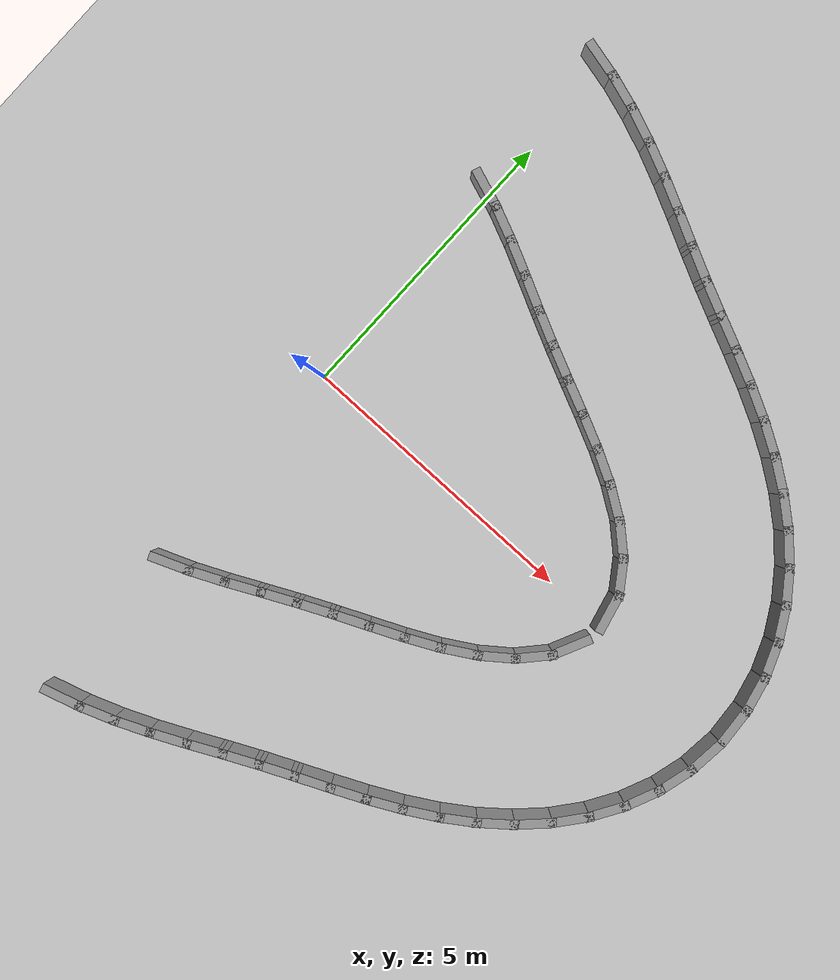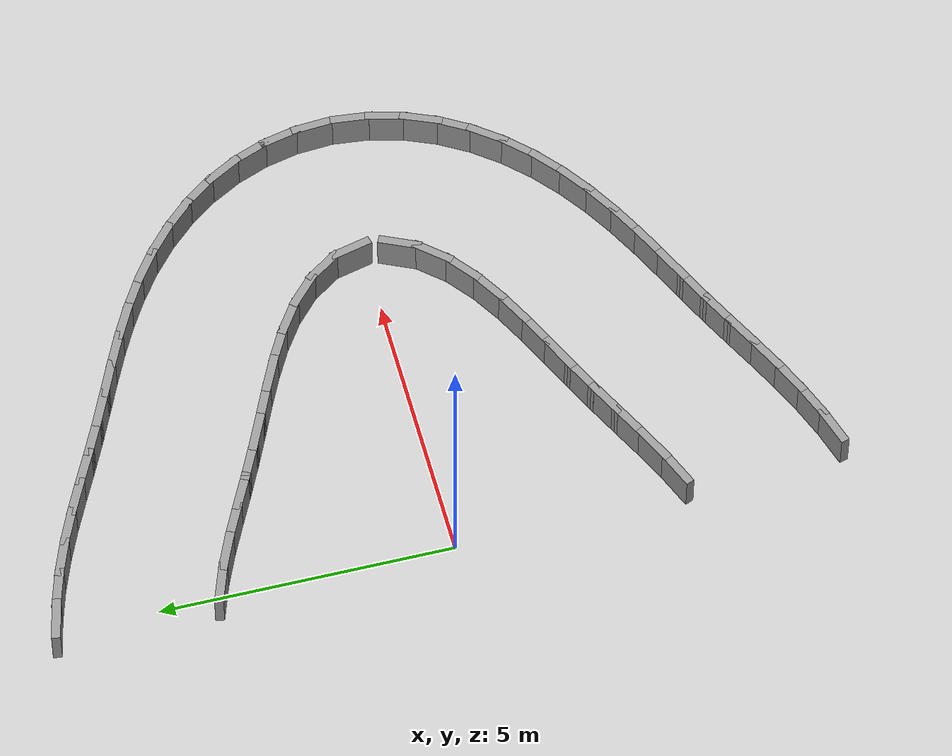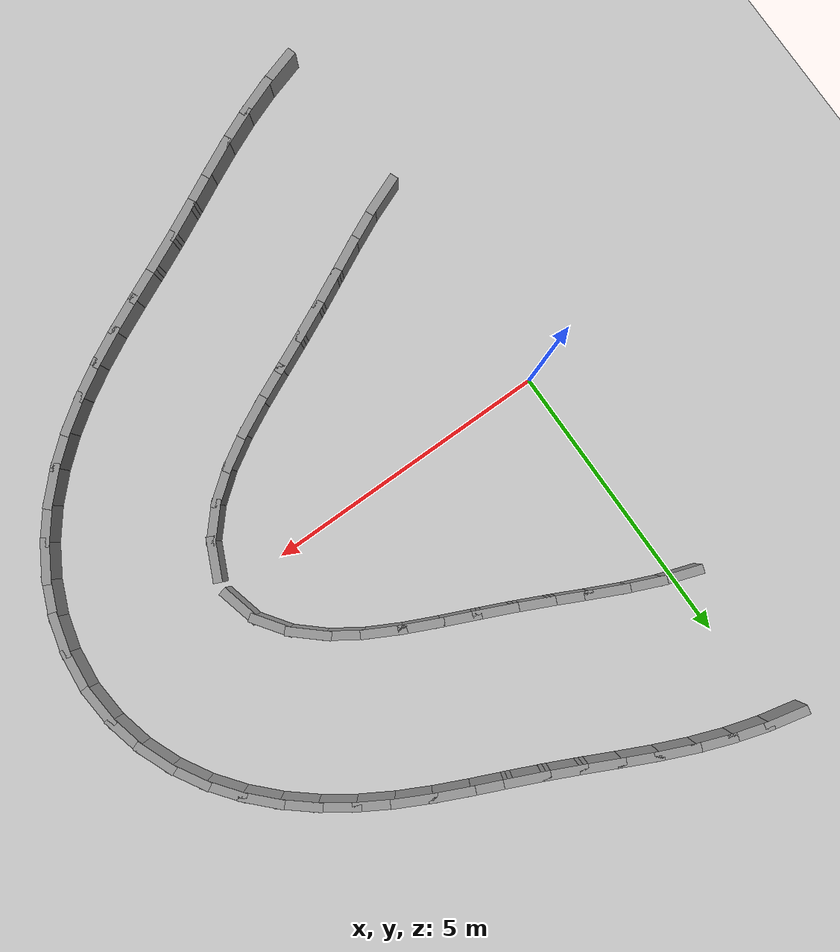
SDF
<sdf version="1.7">
 <world name="default">
  <model name="ground_plane">
   <static>1</static>
   <link name="link">
    <collision name="collision">
     <geometry><plane><normal>0 0 1</normal><size>100 100</size></plane></geometry>
     <surface><friction><ode><mu>100</mu><mu2>50</mu2></ode></friction></surface>
    </collision>
    <visual name="visual">
     <cast_shadows>0</cast_shadows>
     <geometry><plane><normal>0 0 1</normal><size>100 100</size></plane></geometry>
     <material>
      <script><uri>file://media/materials/scripts/gazebo.material</uri><name>Gazebo/Grey</name></script>
     </material>
    </visual>
   </link>
  </model>
  <model name="rand_lobed_01">
   <link name="Wall_0">
    <collision name="Wall_0_Collision">
     <geometry><box><size>0.7447 0.1500 0.6000</size></box></geometry>
     <pose>0 0 0.3000 0 -0 0</pose>
    </collision>
    <visual name="Wall_0_Visual">
     <pose>0 0 0.3000 0 -0 0</pose>
     <geometry><box><size>0.7447 0.1500 0.6000</size></box></geometry>
     <material>
      <script><uri>file://media/materials/scripts/gazebo.material</uri><name>Gazebo/Grey</name></script>
      <ambient>1 1 1 1</ambient>
     </material>
    </visual>
    <pose>5.9368 0.2886 0 0 -0 1.81346</pose>
   </link>
   <link name="Wall_1">
    <collision name="Wall_1_Collision">
     <geometry><box><size>0.7480 0.1500 0.6000</size></box></geometry>
     <pose>0 0 0.3000 0 -0 0</pose>
    </collision>
    <visual name="Wall_1_Visual">
     <pose>0 0 0.3000 0 -0 0</pose>
     <geometry><box><size>0.7480 0.1500 0.6000</size></box></geometry>
     <material>
      <script><uri>file://media/materials/scripts/gazebo.material</uri><name>Gazebo/Grey</name></script>
      <ambient>1 1 1 1</ambient>
     </material>
    </visual>
    <pose>5.6933 0.8218 0 0 -0 2.18384</pose>
   </link>
   <link name="Wall_2">
    <collision name="Wall_2_Collision">
     <geometry><box><size>0.7492 0.1500 0.6000</size></box></geometry>
     <pose>0 0 0.3000 0 -0 0</pose>
    </collision>
    <visual name="Wall_2_Visual">
     <pose>0 0 0.3000 0 -0 0</pose>
     <geometry><box><size>0.7492 0.1500 0.6000</size></box></geometry>
     <material>
      <script><uri>file://media/materials/scripts/gazebo.material</uri><name>Gazebo/Grey</name></script>
      <ambient>1 1 1 1</ambient>
     </material>
    </visual>
    <pose>5.2981 1.2662 0 0 -0 2.41141</pose>
   </link>
   <link name="Wall_3">
    <collision name="Wall_3_Collision">
     <geometry><box><size>0.7497 0.1500 0.6000</size></box></geometry>
     <pose>0 0 0.3000 0 -0 0</pose>
    </collision>
    <visual name="Wall_3_Visual">
     <pose>0 0 0.3000 0 -0 0</pose>
     <geometry><box><size>0.7497 0.1500 0.6000</size></box></geometry>
     <material>
      <script><uri>file://media/materials/scripts/gazebo.material</uri><name>Gazebo/Grey</name></script>
      <ambient>1 1 1 1</ambient>
     </material>
    </visual>
    <pose>4.8248 1.6315 0 0 -0 2.55708</pose>
   </link>
   <link name="Wall_4">
    <collision name="Wall_4_Collision">
     <geometry><box><size>0.7499 0.1500 0.6000</size></box></geometry>
     <pose>0 0 0.3000 0 -0 0</pose>
    </collision>
    <visual name="Wall_4_Visual">
     <pose>0 0 0.3000 0 -0 0</pose>
     <geometry><box><size>0.7499 0.1500 0.6000</size></box></geometry>
     <material>
      <script><uri>file://media/materials/scripts/gazebo.material</uri><name>Gazebo/Grey</name></script>
      <ambient>1 1 1 1</ambient>
     </material>
    </visual>
    <pose>4.3103 1.9384 0 0 -0 2.65016</pose>
   </link>
   <link name="Wall_5">
    <collision name="Wall_5_Collision">
     <geometry><box><size>0.7500 0.1500 0.6000</size></box></geometry>
     <pose>0 0 0.3000 0 -0 0</pose>
    </collision>
    <visual name="Wall_5_Visual">
     <pose>0 0 0.3000 0 -0 0</pose>
     <geometry><box><size>0.7500 0.1500 0.6000</size></box></geometry>
     <material>
      <script><uri>file://media/materials/scripts/gazebo.material</uri><name>Gazebo/Grey</name></script>
      <ambient>1 1 1 1</ambient>
     </material>
    </visual>
    <pose>3.7743 2.2075 0 0 -0 2.70257</pose>
   </link>
   <link name="Wall_6">
    <collision name="Wall_6_Collision">
     <geometry><box><size>0.7500 0.1500 0.6000</size></box></geometry>
     <pose>0 0 0.3000 0 -0 0</pose>
    </collision>
    <visual name="Wall_6_Visual">
     <pose>0 0 0.3000 0 -0 0</pose>
     <geometry><box><size>0.7500 0.1500 0.6000</size></box></geometry>
     <material>
      <script><uri>file://media/materials/scripts/gazebo.material</uri><name>Gazebo/Grey</name></script>
      <ambient>1 1 1 1</ambient>
     </material>
    </visual>
    <pose>3.2290 2.4575 0 0 -0 2.72103</pose>
   </link>
   <link name="Wall_7">
    <collision name="Wall_7_Collision">
     <geometry><box><size>0.7500 0.1500 0.6000</size></box></geometry>
     <pose>0 0 0.3000 0 -0 0</pose>
    </collision>
    <visual name="Wall_7_Visual">
     <pose>0 0 0.3000 0 -0 0</pose>
     <geometry><box><size>0.7500 0.1500 0.6000</size></box></geometry>
     <material>
      <script><uri>file://media/materials/scripts/gazebo.material</uri><name>Gazebo/Grey</name></script>
      <ambient>1 1 1 1</ambient>
     </material>
    </visual>
    <pose>2.6821 2.7043 0 0 -0 2.71419</pose>
   </link>
   <link name="Wall_8">
    <collision name="Wall_8_Collision">
     <geometry><box><size>0.7500 0.1500 0.6000</size></box></geometry>
     <pose>0 0 0.3000 0 -0 0</pose>
    </collision>
    <visual name="Wall_8_Visual">
     <pose>0 0 0.3000 0 -0 0</pose>
     <geometry><box><size>0.7500 0.1500 0.6000</size></box></geometry>
     <material>
      <script><uri>file://media/materials/scripts/gazebo.material</uri><name>Gazebo/Grey</name></script>
      <ambient>1 1 1 1</ambient>
     </material>
    </visual>
    <pose>2.1384 2.9580 0 0 -0 2.69587</pose>
   </link>
   <link name="Wall_9">
    <collision name="Wall_9_Collision">
     <geometry><box><size>0.7500 0.1500 0.6000</size></box></geometry>
     <pose>0 0 0.3000 0 -0 0</pose>
    </collision>
    <visual name="Wall_9_Visual">
     <pose>0 0 0.3000 0 -0 0</pose>
     <geometry><box><size>0.7500 0.1500 0.6000</size></box></geometry>
     <material>
      <script><uri>file://media/materials/scripts/gazebo.material</uri><name>Gazebo/Grey</name></script>
      <ambient>1 1 1 1</ambient>
     </material>
    </visual>
    <pose>1.5986 3.2200 0 0 -0 2.68352</pose>
   </link>
   <link name="Wall_10">
    <collision name="Wall_10_Collision">
     <geometry><box><size>0.7500 0.1500 0.6000</size></box></geometry>
     <pose>0 0 0.3000 0 -0 0</pose>
    </collision>
    <visual name="Wall_10_Visual">
     <pose>0 0 0.3000 0 -0 0</pose>
     <geometry><box><size>0.7500 0.1500 0.6000</size></box></geometry>
     <material>
      <script><uri>file://media/materials/scripts/gazebo.material</uri><name>Gazebo/Grey</name></script>
      <ambient>1 1 1 1</ambient>
     </material>
    </visual>
    <pose>1.0592 3.4827 0 0 -0 2.69310</pose>
   </link>
   <link name="Wall_11">
    <collision name="Wall_11_Collision">
     <geometry><box><size>0.7499 0.1500 0.6000</size></box></geometry>
     <pose>0 0 0.3000 0 -0 0</pose>
    </collision>
    <visual name="Wall_11_Visual">
     <pose>0 0 0.3000 0 -0 0</pose>
     <geometry><box><size>0.7499 0.1500 0.6000</size></box></geometry>
     <material>
      <script><uri>file://media/materials/scripts/gazebo.material</uri><name>Gazebo/Grey</name></script>
      <ambient>1 1 1 1</ambient>
     </material>
    </visual>
    <pose>0.5136 3.7318 0 0 -0 2.73362</pose>
   </link>
   <link name="Wall_12">
    <collision name="Wall_12_Collision">
     <geometry><box><size>0.7498 0.1500 0.6000</size></box></geometry>
     <pose>0 0 0.3000 0 -0 0</pose>
    </collision>
    <visual name="Wall_12_Visual">
     <pose>0 0 0.3000 0 -0 0</pose>
     <geometry><box><size>0.7498 0.1500 0.6000</size></box></geometry>
     <material>
      <script><uri>file://media/materials/scripts/gazebo.material</uri><name>Gazebo/Grey</name></script>
      <ambient>1 1 1 1</ambient>
     </material>
    </visual>
    <pose>-0.0449 3.9497 0 0 -0 2.80566</pose>
   </link>
   <link name="Wall_38">
    <collision name="Wall_38_Collision">
     <geometry><box><size>0.7499 0.1500 0.6000</size></box></geometry>
     <pose>0 0 0.3000 0 -0 0</pose>
    </collision>
    <visual name="Wall_38_Visual">
     <pose>0 0 0.3000 0 -0 0</pose>
     <geometry><box><size>0.7499 0.1500 0.6000</size></box></geometry>
     <material>
      <script><uri>file://media/materials/scripts/gazebo.material</uri><name>Gazebo/Grey</name></script>
      <ambient>1 1 1 1</ambient>
     </material>
    </visual>
    <pose>0.2510 -3.8400 0 0 -0 0.37757</pose>
   </link>
   <link name="Wall_39">
    <collision name="Wall_39_Collision">
     <geometry><box><size>0.7500 0.1500 0.6000</size></box></geometry>
     <pose>0 0 0.3000 0 -0 0</pose>
    </collision>
    <visual name="Wall_39_Visual">
     <pose>0 0 0.3000 0 -0 0</pose>
     <geometry><box><size>0.7500 0.1500 0.6000</size></box></geometry>
     <material>
      <script><uri>file://media/materials/scripts/gazebo.material</uri><name>Gazebo/Grey</name></script>
      <ambient>1 1 1 1</ambient>
     </material>
    </visual>
    <pose>0.8020 -3.6035 0 0 -0 0.43337</pose>
   </link>
   <link name="Wall_40">
    <collision name="Wall_40_Collision">
     <geometry><box><size>0.7500 0.1500 0.6000</size></box></geometry>
     <pose>0 0 0.3000 0 -0 0</pose>
    </collision>
    <visual name="Wall_40_Visual">
     <pose>0 0 0.3000 0 -0 0</pose>
     <geometry><box><size>0.7500 0.1500 0.6000</size></box></geometry>
     <material>
      <script><uri>file://media/materials/scripts/gazebo.material</uri><name>Gazebo/Grey</name></script>
      <ambient>1 1 1 1</ambient>
     </material>
    </visual>
    <pose>1.3435 -3.3451 0 0 -0 0.45703</pose>
   </link>
   <link name="Wall_41">
    <collision name="Wall_41_Collision">
     <geometry><box><size>0.7500 0.1500 0.6000</size></box></geometry>
     <pose>0 0 0.3000 0 -0 0</pose>
    </collision>
    <visual name="Wall_41_Visual">
     <pose>0 0 0.3000 0 -0 0</pose>
     <geometry><box><size>0.7500 0.1500 0.6000</size></box></geometry>
     <material>
      <script><uri>file://media/materials/scripts/gazebo.material</uri><name>Gazebo/Grey</name></script>
      <ambient>1 1 1 1</ambient>
     </material>
    </visual>
    <pose>1.8824 -3.0813 0 0 -0 0.45340</pose>
   </link>
   <link name="Wall_42">
    <collision name="Wall_42_Collision">
     <geometry><box><size>0.7500 0.1500 0.6000</size></box></geometry>
     <pose>0 0 0.3000 0 -0 0</pose>
    </collision>
    <visual name="Wall_42_Visual">
     <pose>0 0 0.3000 0 -0 0</pose>
     <geometry><box><size>0.7500 0.1500 0.6000</size></box></geometry>
     <material>
      <script><uri>file://media/materials/scripts/gazebo.material</uri><name>Gazebo/Grey</name></script>
      <ambient>1 1 1 1</ambient>
     </material>
    </visual>
    <pose>2.4240 -2.8233 0 0 -0 0.43568</pose>
   </link>
   <link name="Wall_43">
    <collision name="Wall_43_Collision">
     <geometry><box><size>0.7500 0.1500 0.6000</size></box></geometry>
     <pose>0 0 0.3000 0 -0 0</pose>
    </collision>
    <visual name="Wall_43_Visual">
     <pose>0 0 0.3000 0 -0 0</pose>
     <geometry><box><size>0.7500 0.1500 0.6000</size></box></geometry>
     <material>
      <script><uri>file://media/materials/scripts/gazebo.material</uri><name>Gazebo/Grey</name></script>
      <ambient>1 1 1 1</ambient>
     </material>
    </visual>
    <pose>2.9697 -2.5740 0 0 -0 0.42137</pose>
   </link>
   <link name="Wall_44">
    <collision name="Wall_44_Collision">
     <geometry><box><size>0.7500 0.1500 0.6000</size></box></geometry>
     <pose>0 0 0.3000 0 -0 0</pose>
    </collision>
    <visual name="Wall_44_Visual">
     <pose>0 0 0.3000 0 -0 0</pose>
     <geometry><box><size>0.7500 0.1500 0.6000</size></box></geometry>
     <material>
      <script><uri>file://media/materials/scripts/gazebo.material</uri><name>Gazebo/Grey</name></script>
      <ambient>1 1 1 1</ambient>
     </material>
    </visual>
    <pose>3.5166 -2.3272 0 0 -0 0.42648</pose>
   </link>
   <link name="Wall_45">
    <collision name="Wall_45_Collision">
     <geometry><box><size>0.7499 0.1500 0.6000</size></box></geometry>
     <pose>0 0 0.3000 0 -0 0</pose>
    </collision>
    <visual name="Wall_45_Visual">
     <pose>0 0 0.3000 0 -0 0</pose>
     <geometry><box><size>0.7499 0.1500 0.6000</size></box></geometry>
     <material>
      <script><uri>file://media/materials/scripts/gazebo.material</uri><name>Gazebo/Grey</name></script>
      <ambient>1 1 1 1</ambient>
     </material>
    </visual>
    <pose>4.0583 -2.0694 0 0 -0 0.46196</pose>
   </link>
   <link name="Wall_46">
    <collision name="Wall_46_Collision">
     <geometry><box><size>0.7498 0.1500 0.6000</size></box></geometry>
     <pose>0 0 0.3000 0 -0 0</pose>
    </collision>
    <visual name="Wall_46_Visual">
     <pose>0 0 0.3000 0 -0 0</pose>
     <geometry><box><size>0.7498 0.1500 0.6000</size></box></geometry>
     <material>
      <script><uri>file://media/materials/scripts/gazebo.material</uri><name>Gazebo/Grey</name></script>
      <ambient>1 1 1 1</ambient>
     </material>
    </visual>
    <pose>4.5848 -1.7828 0 0 -0 0.53483</pose>
   </link>
   <link name="Wall_47">
    <collision name="Wall_47_Collision">
     <geometry><box><size>0.7495 0.1500 0.6000</size></box></geometry>
     <pose>0 0 0.3000 0 -0 0</pose>
    </collision>
    <visual name="Wall_47_Visual">
     <pose>0 0 0.3000 0 -0 0</pose>
     <geometry><box><size>0.7495 0.1500 0.6000</size></box></geometry>
     <material>
      <script><uri>file://media/materials/scripts/gazebo.material</uri><name>Gazebo/Grey</name></script>
      <ambient>1 1 1 1</ambient>
     </material>
    </visual>
    <pose>5.0808 -1.4478 0 0 -0 0.65340</pose>
   </link>
   <link name="Wall_48">
    <collision name="Wall_48_Collision">
     <geometry><box><size>0.7487 0.1500 0.6000</size></box></geometry>
     <pose>0 0 0.3000 0 -0 0</pose>
    </collision>
    <visual name="Wall_48_Visual">
     <pose>0 0 0.3000 0 -0 0</pose>
     <geometry><box><size>0.7487 0.1500 0.6000</size></box></geometry>
     <material>
      <script><uri>file://media/materials/scripts/gazebo.material</uri><name>Gazebo/Grey</name></script>
      <ambient>1 1 1 1</ambient>
     </material>
    </visual>
    <pose>5.5194 -1.0434 0 0 -0 0.83661</pose>
   </link>
   <link name="Wall_49">
    <collision name="Wall_49_Collision">
     <geometry><box><size>0.7465 0.1500 0.6000</size></box></geometry>
     <pose>0 0 0.3000 0 -0 0</pose>
    </collision>
    <visual name="Wall_49_Visual">
     <pose>0 0 0.3000 0 -0 0</pose>
     <geometry><box><size>0.7465 0.1500 0.6000</size></box></geometry>
     <material>
      <script><uri>file://media/materials/scripts/gazebo.material</uri><name>Gazebo/Grey</name></script>
      <ambient>1 1 1 1</ambient>
     </material>
    </visual>
    <pose>5.8470 -0.5513 0 0 -0 1.13068</pose>
   </link>
   <link name="Wall_50">
    <collision name="Wall_50_Collision">
     <geometry><box><size>0.7494 0.1500 0.6000</size></box></geometry>
     <pose>0 0 0.3000 0 -0 0</pose>
    </collision>
    <visual name="Wall_50_Visual">
     <pose>0 0 0.3000 0 -0 0</pose>
     <geometry><box><size>0.7494 0.1500 0.6000</size></box></geometry>
     <material>
      <script><uri>file://media/materials/scripts/gazebo.material</uri><name>Gazebo/Grey</name></script>
      <ambient>1 1 1 1</ambient>
     </material>
    </visual>
    <pose>8.6292 0.2988 0 0 -0 1.64962</pose>
   </link>
   <link name="Wall_51">
    <collision name="Wall_51_Collision">
     <geometry><box><size>0.7494 0.1500 0.6000</size></box></geometry>
     <pose>0 0 0.3000 0 -0 0</pose>
    </collision>
    <visual name="Wall_51_Visual">
     <pose>0 0 0.3000 0 -0 0</pose>
     <geometry><box><size>0.7494 0.1500 0.6000</size></box></geometry>
     <material>
      <script><uri>file://media/materials/scripts/gazebo.material</uri><name>Gazebo/Grey</name></script>
      <ambient>1 1 1 1</ambient>
     </material>
    </visual>
    <pose>8.5361 0.8890 0 0 -0 1.80491</pose>
   </link>
   <link name="Wall_52">
    <collision name="Wall_52_Collision">
     <geometry><box><size>0.7495 0.1500 0.6000</size></box></geometry>
     <pose>0 0 0.3000 0 -0 0</pose>
    </collision>
    <visual name="Wall_52_Visual">
     <pose>0 0 0.3000 0 -0 0</pose>
     <geometry><box><size>0.7495 0.1500 0.6000</size></box></geometry>
     <material>
      <script><uri>file://media/materials/scripts/gazebo.material</uri><name>Gazebo/Grey</name></script>
      <ambient>1 1 1 1</ambient>
     </material>
    </visual>
    <pose>8.3545 1.4585 0 0 -0 1.95424</pose>
   </link>
   <link name="Wall_53">
    <collision name="Wall_53_Collision">
     <geometry><box><size>0.7495 0.1500 0.6000</size></box></geometry>
     <pose>0 0 0.3000 0 -0 0</pose>
    </collision>
    <visual name="Wall_53_Visual">
     <pose>0 0 0.3000 0 -0 0</pose>
     <geometry><box><size>0.7495 0.1500 0.6000</size></box></geometry>
     <material>
      <script><uri>file://media/materials/scripts/gazebo.material</uri><name>Gazebo/Grey</name></script>
      <ambient>1 1 1 1</ambient>
     </material>
    </visual>
    <pose>8.0924 1.9961 0 0 -0 2.09437</pose>
   </link>
   <link name="Wall_54">
    <collision name="Wall_54_Collision">
     <geometry><box><size>0.7496 0.1500 0.6000</size></box></geometry>
     <pose>0 0 0.3000 0 -0 0</pose>
    </collision>
    <visual name="Wall_54_Visual">
     <pose>0 0 0.3000 0 -0 0</pose>
     <geometry><box><size>0.7496 0.1500 0.6000</size></box></geometry>
     <material>
      <script><uri>file://media/materials/scripts/gazebo.material</uri><name>Gazebo/Grey</name></script>
      <ambient>1 1 1 1</ambient>
     </material>
    </visual>
    <pose>7.7606 2.4940 0 0 -0 2.22297</pose>
   </link>
   <link name="Wall_55">
    <collision name="Wall_55_Collision">
     <geometry><box><size>0.7497 0.1500 0.6000</size></box></geometry>
     <pose>0 0 0.3000 0 -0 0</pose>
    </collision>
    <visual name="Wall_55_Visual">
     <pose>0 0 0.3000 0 -0 0</pose>
     <geometry><box><size>0.7497 0.1500 0.6000</size></box></geometry>
     <material>
      <script><uri>file://media/materials/scripts/gazebo.material</uri><name>Gazebo/Grey</name></script>
      <ambient>1 1 1 1</ambient>
     </material>
    </visual>
    <pose>7.3703 2.9480 0 0 -0 2.33893</pose>
   </link>
   <link name="Wall_56">
    <collision name="Wall_56_Collision">
     <geometry><box><size>0.7498 0.1500 0.6000</size></box></geometry>
     <pose>0 0 0.3000 0 -0 0</pose>
    </collision>
    <visual name="Wall_56_Visual">
     <pose>0 0 0.3000 0 -0 0</pose>
     <geometry><box><size>0.7498 0.1500 0.6000</size></box></geometry>
     <material>
      <script><uri>file://media/materials/scripts/gazebo.material</uri><name>Gazebo/Grey</name></script>
      <ambient>1 1 1 1</ambient>
     </material>
    </visual>
    <pose>6.9326 3.3568 0 0 -0 2.44145</pose>
   </link>
   <link name="Wall_57">
    <collision name="Wall_57_Collision">
     <geometry><box><size>0.7498 0.1500 0.6000</size></box></geometry>
     <pose>0 0 0.3000 0 -0 0</pose>
    </collision>
    <visual name="Wall_57_Visual">
     <pose>0 0 0.3000 0 -0 0</pose>
     <geometry><box><size>0.7498 0.1500 0.6000</size></box></geometry>
     <material>
      <script><uri>file://media/materials/scripts/gazebo.material</uri><name>Gazebo/Grey</name></script>
      <ambient>1 1 1 1</ambient>
     </material>
    </visual>
    <pose>6.4577 3.7222 0 0 -0 2.53033</pose>
   </link>
   <link name="Wall_58">
    <collision name="Wall_58_Collision">
     <geometry><box><size>0.7499 0.1500 0.6000</size></box></geometry>
     <pose>0 0 0.3000 0 -0 0</pose>
    </collision>
    <visual name="Wall_58_Visual">
     <pose>0 0 0.3000 0 -0 0</pose>
     <geometry><box><size>0.7499 0.1500 0.6000</size></box></geometry>
     <material>
      <script><uri>file://media/materials/scripts/gazebo.material</uri><name>Gazebo/Grey</name></script>
      <ambient>1 1 1 1</ambient>
     </material>
    </visual>
    <pose>5.9543 4.0477 0 0 -0 2.60478</pose>
   </link>
   <link name="Wall_59">
    <collision name="Wall_59_Collision">
     <geometry><box><size>0.7499 0.1500 0.6000</size></box></geometry>
     <pose>0 0 0.3000 0 -0 0</pose>
    </collision>
    <visual name="Wall_59_Visual">
     <pose>0 0 0.3000 0 -0 0</pose>
     <geometry><box><size>0.7499 0.1500 0.6000</size></box></geometry>
     <material>
      <script><uri>file://media/materials/scripts/gazebo.material</uri><name>Gazebo/Grey</name></script>
      <ambient>1 1 1 1</ambient>
     </material>
    </visual>
    <pose>5.4303 4.3392 0 0 -0 2.66331</pose>
   </link>
   <link name="Wall_60">
    <collision name="Wall_60_Collision">
     <geometry><box><size>0.7500 0.1500 0.6000</size></box></geometry>
     <pose>0 0 0.3000 0 -0 0</pose>
    </collision>
    <visual name="Wall_60_Visual">
     <pose>0 0 0.3000 0 -0 0</pose>
     <geometry><box><size>0.7500 0.1500 0.6000</size></box></geometry>
     <material>
      <script><uri>file://media/materials/scripts/gazebo.material</uri><name>Gazebo/Grey</name></script>
      <ambient>1 1 1 1</ambient>
     </material>
    </visual>
    <pose>4.8923 4.6045 0 0 -0 2.70322</pose>
   </link>
   <link name="Wall_61">
    <collision name="Wall_61_Collision">
     <geometry><box><size>0.7500 0.1500 0.6000</size></box></geometry>
     <pose>0 0 0.3000 0 -0 0</pose>
    </collision>
    <visual name="Wall_61_Visual">
     <pose>0 0 0.3000 0 -0 0</pose>
     <geometry><box><size>0.7500 0.1500 0.6000</size></box></geometry>
     <material>
      <script><uri>file://media/materials/scripts/gazebo.material</uri><name>Gazebo/Grey</name></script>
      <ambient>1 1 1 1</ambient>
     </material>
    </visual>
    <pose>4.3469 4.8544 0 0 -0 2.72075</pose>
   </link>
   <link name="Wall_62">
    <collision name="Wall_62_Collision">
     <geometry><box><size>0.7500 0.1500 0.6000</size></box></geometry>
     <pose>0 0 0.3000 0 -0 0</pose>
    </collision>
    <visual name="Wall_62_Visual">
     <pose>0 0 0.3000 0 -0 0</pose>
     <geometry><box><size>0.7500 0.1500 0.6000</size></box></geometry>
     <material>
      <script><uri>file://media/materials/scripts/gazebo.material</uri><name>Gazebo/Grey</name></script>
      <ambient>1 1 1 1</ambient>
     </material>
    </visual>
    <pose>3.8000 5.1012 0 0 -0 2.71475</pose>
   </link>
   <link name="Wall_63">
    <collision name="Wall_63_Collision">
     <geometry><box><size>0.7500 0.1500 0.6000</size></box></geometry>
     <pose>0 0 0.3000 0 -0 0</pose>
    </collision>
    <visual name="Wall_63_Visual">
     <pose>0 0 0.3000 0 -0 0</pose>
     <geometry><box><size>0.7500 0.1500 0.6000</size></box></geometry>
     <material>
      <script><uri>file://media/materials/scripts/gazebo.material</uri><name>Gazebo/Grey</name></script>
      <ambient>1 1 1 1</ambient>
     </material>
    </visual>
    <pose>3.2563 5.3549 0 0 -0 2.69511</pose>
   </link>
   <link name="Wall_64">
    <collision name="Wall_64_Collision">
     <geometry><box><size>0.7500 0.1500 0.6000</size></box></geometry>
     <pose>0 0 0.3000 0 -0 0</pose>
    </collision>
    <visual name="Wall_64_Visual">
     <pose>0 0 0.3000 0 -0 0</pose>
     <geometry><box><size>0.7500 0.1500 0.6000</size></box></geometry>
     <material>
      <script><uri>file://media/materials/scripts/gazebo.material</uri><name>Gazebo/Grey</name></script>
      <ambient>1 1 1 1</ambient>
     </material>
    </visual>
    <pose>2.7167 5.6172 0 0 -0 2.68329</pose>
   </link>
   <link name="Wall_65">
    <collision name="Wall_65_Collision">
     <geometry><box><size>0.7500 0.1500 0.6000</size></box></geometry>
     <pose>0 0 0.3000 0 -0 0</pose>
    </collision>
    <visual name="Wall_65_Visual">
     <pose>0 0 0.3000 0 -0 0</pose>
     <geometry><box><size>0.7500 0.1500 0.6000</size></box></geometry>
     <material>
      <script><uri>file://media/materials/scripts/gazebo.material</uri><name>Gazebo/Grey</name></script>
      <ambient>1 1 1 1</ambient>
     </material>
    </visual>
    <pose>2.1772 5.8797 0 0 -0 2.69406</pose>
   </link>
   <link name="Wall_66">
    <collision name="Wall_66_Collision">
     <geometry><box><size>0.7500 0.1500 0.6000</size></box></geometry>
     <pose>0 0 0.3000 0 -0 0</pose>
    </collision>
    <visual name="Wall_66_Visual">
     <pose>0 0 0.3000 0 -0 0</pose>
     <geometry><box><size>0.7500 0.1500 0.6000</size></box></geometry>
     <material>
      <script><uri>file://media/materials/scripts/gazebo.material</uri><name>Gazebo/Grey</name></script>
      <ambient>1 1 1 1</ambient>
     </material>
    </visual>
    <pose>1.6321 6.1302 0 0 -0 2.72769</pose>
   </link>
   <link name="Wall_67">
    <collision name="Wall_67_Collision">
     <geometry><box><size>0.7499 0.1500 0.6000</size></box></geometry>
     <pose>0 0 0.3000 0 -0 0</pose>
    </collision>
    <visual name="Wall_67_Visual">
     <pose>0 0 0.3000 0 -0 0</pose>
     <geometry><box><size>0.7499 0.1500 0.6000</size></box></geometry>
     <material>
      <script><uri>file://media/materials/scripts/gazebo.material</uri><name>Gazebo/Grey</name></script>
      <ambient>1 1 1 1</ambient>
     </material>
    </visual>
    <pose>1.0770 6.3574 0 0 -0 2.77859</pose>
   </link>
   <link name="Wall_68">
    <collision name="Wall_68_Collision">
     <geometry><box><size>0.7499 0.1500 0.6000</size></box></geometry>
     <pose>0 0 0.3000 0 -0 0</pose>
    </collision>
    <visual name="Wall_68_Visual">
     <pose>0 0 0.3000 0 -0 0</pose>
     <geometry><box><size>0.7499 0.1500 0.6000</size></box></geometry>
     <material>
      <script><uri>file://media/materials/scripts/gazebo.material</uri><name>Gazebo/Grey</name></script>
      <ambient>1 1 1 1</ambient>
     </material>
    </visual>
    <pose>0.5101 6.5525 0 0 -0 2.84168</pose>
   </link>
   <link name="Wall_69">
    <collision name="Wall_69_Collision">
     <geometry><box><size>0.7499 0.1500 0.6000</size></box></geometry>
     <pose>0 0 0.3000 0 -0 0</pose>
    </collision>
    <visual name="Wall_69_Visual">
     <pose>0 0 0.3000 0 -0 0</pose>
     <geometry><box><size>0.7499 0.1500 0.6000</size></box></geometry>
     <material>
      <script><uri>file://media/materials/scripts/gazebo.material</uri><name>Gazebo/Grey</name></script>
      <ambient>1 1 1 1</ambient>
     </material>
    </visual>
    <pose>-0.0686 6.7089 0 0 -0 2.91354</pose>
   </link>
   <link name="Wall_109">
    <collision name="Wall_109_Collision">
     <geometry><box><size>0.7499 0.1500 0.6000</size></box></geometry>
     <pose>0 0 0.3000 0 -0 0</pose>
    </collision>
    <visual name="Wall_109_Visual">
     <pose>0 0 0.3000 0 -0 0</pose>
     <geometry><box><size>0.7499 0.1500 0.6000</size></box></geometry>
     <material>
      <script><uri>file://media/materials/scripts/gazebo.material</uri><name>Gazebo/Grey</name></script>
      <ambient>1 1 1 1</ambient>
     </material>
    </visual>
    <pose>0.4138 -6.5816 0 0 -0 0.28840</pose>
   </link>
   <link name="Wall_110">
    <collision name="Wall_110_Collision">
     <geometry><box><size>0.7499 0.1500 0.6000</size></box></geometry>
     <pose>0 0 0.3000 0 -0 0</pose>
    </collision>
    <visual name="Wall_110_Visual">
     <pose>0 0 0.3000 0 -0 0</pose>
     <geometry><box><size>0.7499 0.1500 0.6000</size></box></geometry>
     <material>
      <script><uri>file://media/materials/scripts/gazebo.material</uri><name>Gazebo/Grey</name></script>
      <ambient>1 1 1 1</ambient>
     </material>
    </visual>
    <pose>0.9828 -6.3925 0 0 -0 0.35316</pose>
   </link>
   <link name="Wall_111">
    <collision name="Wall_111_Collision">
     <geometry><box><size>0.7499 0.1500 0.6000</size></box></geometry>
     <pose>0 0 0.3000 0 -0 0</pose>
    </collision>
    <visual name="Wall_111_Visual">
     <pose>0 0 0.3000 0 -0 0</pose>
     <geometry><box><size>0.7499 0.1500 0.6000</size></box></geometry>
     <material>
      <script><uri>file://media/materials/scripts/gazebo.material</uri><name>Gazebo/Grey</name></script>
      <ambient>1 1 1 1</ambient>
     </material>
    </visual>
    <pose>1.5398 -6.1702 0 0 -0 0.40641</pose>
   </link>
   <link name="Wall_112">
    <collision name="Wall_112_Collision">
     <geometry><box><size>0.7500 0.1500 0.6000</size></box></geometry>
     <pose>0 0 0.3000 0 -0 0</pose>
    </collision>
    <visual name="Wall_112_Visual">
     <pose>0 0 0.3000 0 -0 0</pose>
     <geometry><box><size>0.7500 0.1500 0.6000</size></box></geometry>
     <material>
      <script><uri>file://media/materials/scripts/gazebo.material</uri><name>Gazebo/Grey</name></script>
      <ambient>1 1 1 1</ambient>
     </material>
    </visual>
    <pose>2.0863 -5.9229 0 0 -0 0.44335</pose>
   </link>
   <link name="Wall_113">
    <collision name="Wall_113_Collision">
     <geometry><box><size>0.7500 0.1500 0.6000</size></box></geometry>
     <pose>0 0 0.3000 0 -0 0</pose>
    </collision>
    <visual name="Wall_113_Visual">
     <pose>0 0 0.3000 0 -0 0</pose>
     <geometry><box><size>0.7500 0.1500 0.6000</size></box></geometry>
     <material>
      <script><uri>file://media/materials/scripts/gazebo.material</uri><name>Gazebo/Grey</name></script>
      <ambient>1 1 1 1</ambient>
     </material>
    </visual>
    <pose>2.6263 -5.6615 0 0 -0 0.45823</pose>
   </link>
   <link name="Wall_114">
    <collision name="Wall_114_Collision">
     <geometry><box><size>0.7500 0.1500 0.6000</size></box></geometry>
     <pose>0 0 0.3000 0 -0 0</pose>
    </collision>
    <visual name="Wall_114_Visual">
     <pose>0 0 0.3000 0 -0 0</pose>
     <geometry><box><size>0.7500 0.1500 0.6000</size></box></geometry>
     <material>
      <script><uri>file://media/materials/scripts/gazebo.material</uri><name>Gazebo/Grey</name></script>
      <ambient>1 1 1 1</ambient>
     </material>
    </visual>
    <pose>3.1656 -5.3985 0 0 -0 0.44961</pose>
   </link>
   <link name="Wall_115">
    <collision name="Wall_115_Collision">
     <geometry><box><size>0.7500 0.1500 0.6000</size></box></geometry>
     <pose>0 0 0.3000 0 -0 0</pose>
    </collision>
    <visual name="Wall_115_Visual">
     <pose>0 0 0.3000 0 -0 0</pose>
     <geometry><box><size>0.7500 0.1500 0.6000</size></box></geometry>
     <material>
      <script><uri>file://media/materials/scripts/gazebo.material</uri><name>Gazebo/Grey</name></script>
      <ambient>1 1 1 1</ambient>
     </material>
    </visual>
    <pose>3.7085 -5.1431 0 0 -0 0.42969</pose>
   </link>
   <link name="Wall_116">
    <collision name="Wall_116_Collision">
     <geometry><box><size>0.7500 0.1500 0.6000</size></box></geometry>
     <pose>0 0 0.3000 0 -0 0</pose>
    </collision>
    <visual name="Wall_116_Visual">
     <pose>0 0 0.3000 0 -0 0</pose>
     <geometry><box><size>0.7500 0.1500 0.6000</size></box></geometry>
     <material>
      <script><uri>file://media/materials/scripts/gazebo.material</uri><name>Gazebo/Grey</name></script>
      <ambient>1 1 1 1</ambient>
     </material>
    </visual>
    <pose>4.2551 -4.8957 0 0 -0 0.42029</pose>
   </link>
   <link name="Wall_117">
    <collision name="Wall_117_Collision">
     <geometry><box><size>0.7500 0.1500 0.6000</size></box></geometry>
     <pose>0 0 0.3000 0 -0 0</pose>
    </collision>
    <visual name="Wall_117_Visual">
     <pose>0 0 0.3000 0 -0 0</pose>
     <geometry><box><size>0.7500 0.1500 0.6000</size></box></geometry>
     <material>
      <script><uri>file://media/materials/scripts/gazebo.material</uri><name>Gazebo/Grey</name></script>
      <ambient>1 1 1 1</ambient>
     </material>
    </visual>
    <pose>4.8012 -4.6472 0 0 -0 0.43378</pose>
   </link>
   <link name="Wall_118">
    <collision name="Wall_118_Collision">
     <geometry><box><size>0.7499 0.1500 0.6000</size></box></geometry>
     <pose>0 0 0.3000 0 -0 0</pose>
    </collision>
    <visual name="Wall_118_Visual">
     <pose>0 0 0.3000 0 -0 0</pose>
     <geometry><box><size>0.7499 0.1500 0.6000</size></box></geometry>
     <material>
      <script><uri>file://media/materials/scripts/gazebo.material</uri><name>Gazebo/Grey</name></script>
      <ambient>1 1 1 1</ambient>
     </material>
    </visual>
    <pose>5.3408 -4.3852 0 0 -0 0.47017</pose>
   </link>
   <link name="Wall_119">
    <collision name="Wall_119_Collision">
     <geometry><box><size>0.7499 0.1500 0.6000</size></box></geometry>
     <pose>0 0 0.3000 0 -0 0</pose>
    </collision>
    <visual name="Wall_119_Visual">
     <pose>0 0 0.3000 0 -0 0</pose>
     <geometry><box><size>0.7499 0.1500 0.6000</size></box></geometry>
     <material>
      <script><uri>file://media/materials/scripts/gazebo.material</uri><name>Gazebo/Grey</name></script>
      <ambient>1 1 1 1</ambient>
     </material>
    </visual>
    <pose>5.8677 -4.0988 0 0 -0 0.52584</pose>
   </link>
   <link name="Wall_120">
    <collision name="Wall_120_Collision">
     <geometry><box><size>0.7498 0.1500 0.6000</size></box></geometry>
     <pose>0 0 0.3000 0 -0 0</pose>
    </collision>
    <visual name="Wall_120_Visual">
     <pose>0 0 0.3000 0 -0 0</pose>
     <geometry><box><size>0.7498 0.1500 0.6000</size></box></geometry>
     <material>
      <script><uri>file://media/materials/scripts/gazebo.material</uri><name>Gazebo/Grey</name></script>
      <ambient>1 1 1 1</ambient>
     </material>
    </visual>
    <pose>6.3750 -3.7794 0 0 -0 0.59776</pose>
   </link>
   <link name="Wall_121">
    <collision name="Wall_121_Collision">
     <geometry><box><size>0.7498 0.1500 0.6000</size></box></geometry>
     <pose>0 0 0.3000 0 -0 0</pose>
    </collision>
    <visual name="Wall_121_Visual">
     <pose>0 0 0.3000 0 -0 0</pose>
     <geometry><box><size>0.7498 0.1500 0.6000</size></box></geometry>
     <material>
      <script><uri>file://media/materials/scripts/gazebo.material</uri><name>Gazebo/Grey</name></script>
      <ambient>1 1 1 1</ambient>
     </material>
    </visual>
    <pose>6.8553 -3.4211 0 0 -0 0.68424</pose>
   </link>
   <link name="Wall_122">
    <collision name="Wall_122_Collision">
     <geometry><box><size>0.7497 0.1500 0.6000</size></box></geometry>
     <pose>0 0 0.3000 0 -0 0</pose>
    </collision>
    <visual name="Wall_122_Visual">
     <pose>0 0 0.3000 0 -0 0</pose>
     <geometry><box><size>0.7497 0.1500 0.6000</size></box></geometry>
     <material>
      <script><uri>file://media/materials/scripts/gazebo.material</uri><name>Gazebo/Grey</name></script>
      <ambient>1 1 1 1</ambient>
     </material>
    </visual>
    <pose>7.2999 -3.0197 0 0 -0 0.78454</pose>
   </link>
   <link name="Wall_123">
    <collision name="Wall_123_Collision">
     <geometry><box><size>0.7496 0.1500 0.6000</size></box></geometry>
     <pose>0 0 0.3000 0 -0 0</pose>
    </collision>
    <visual name="Wall_123_Visual">
     <pose>0 0 0.3000 0 -0 0</pose>
     <geometry><box><size>0.7496 0.1500 0.6000</size></box></geometry>
     <material>
      <script><uri>file://media/materials/scripts/gazebo.material</uri><name>Gazebo/Grey</name></script>
      <ambient>1 1 1 1</ambient>
     </material>
    </visual>
    <pose>7.6989 -2.5733 0 0 -0 0.89819</pose>
   </link>
   <link name="Wall_124">
    <collision name="Wall_124_Collision">
     <geometry><box><size>0.7496 0.1500 0.6000</size></box></geometry>
     <pose>0 0 0.3000 0 -0 0</pose>
    </collision>
    <visual name="Wall_124_Visual">
     <pose>0 0 0.3000 0 -0 0</pose>
     <geometry><box><size>0.7496 0.1500 0.6000</size></box></geometry>
     <material>
      <script><uri>file://media/materials/scripts/gazebo.material</uri><name>Gazebo/Grey</name></script>
      <ambient>1 1 1 1</ambient>
     </material>
    </visual>
    <pose>8.0414 -2.0826 0 0 -0 1.02485</pose>
   </link>
   <link name="Wall_125">
    <collision name="Wall_125_Collision">
     <geometry><box><size>0.7495 0.1500 0.6000</size></box></geometry>
     <pose>0 0 0.3000 0 -0 0</pose>
    </collision>
    <visual name="Wall_125_Visual">
     <pose>0 0 0.3000 0 -0 0</pose>
     <geometry><box><size>0.7495 0.1500 0.6000</size></box></geometry>
     <material>
      <script><uri>file://media/materials/scripts/gazebo.material</uri><name>Gazebo/Grey</name></script>
      <ambient>1 1 1 1</ambient>
     </material>
    </visual>
    <pose>8.3159 -1.5512 0 0 -0 1.16311</pose>
   </link>
   <link name="Wall_126">
    <collision name="Wall_126_Collision">
     <geometry><box><size>0.7494 0.1500 0.6000</size></box></geometry>
     <pose>0 0 0.3000 0 -0 0</pose>
    </collision>
    <visual name="Wall_126_Visual">
     <pose>0 0 0.3000 0 -0 0</pose>
     <geometry><box><size>0.7494 0.1500 0.6000</size></box></geometry>
     <material>
      <script><uri>file://media/materials/scripts/gazebo.material</uri><name>Gazebo/Grey</name></script>
      <ambient>1 1 1 1</ambient>
     </material>
    </visual>
    <pose>8.5117 -0.9864 0 0 -0 1.31108</pose>
   </link>
   <link name="Wall_127">
    <collision name="Wall_127_Collision">
     <geometry><box><size>0.7494 0.1500 0.6000</size></box></geometry>
     <pose>0 0 0.3000 0 -0 0</pose>
    </collision>
    <visual name="Wall_127_Visual">
     <pose>0 0 0.3000 0 -0 0</pose>
     <geometry><box><size>0.7494 0.1500 0.6000</size></box></geometry>
     <material>
      <script><uri>file://media/materials/scripts/gazebo.material</uri><name>Gazebo/Grey</name></script>
      <ambient>1 1 1 1</ambient>
     </material>
    </visual>
    <pose>8.6200 -0.3987 0 0 -0 1.46579</pose>
   </link>
   <static>1</static>
  </model>
 </world>
</sdf>
